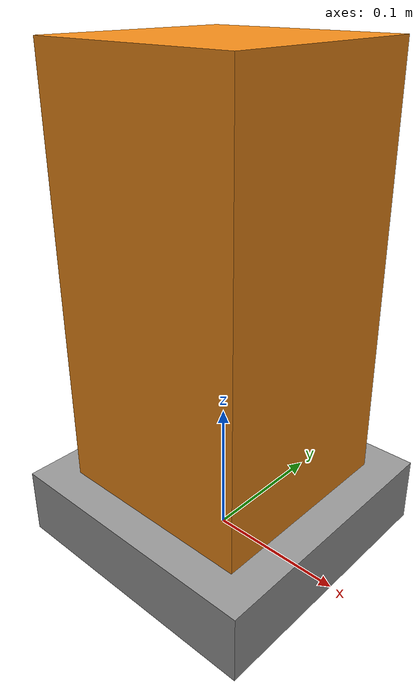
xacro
<?xml version="1.0"?>
<!-- One DOF Hopper -->
<robot name="odh" xmlns:xacro="http://www.ros.org/wiki/xacro">

  <!-- Constants for robot dimensions -->
  <xacro:property name="PI" value="3.1415926535897931"/>
  <xacro:property name="body_mass" value="0.6" />
  <xacro:property name="body_width" value="0.15" />
  <xacro:property name="body_height" value="0.3" />

  <xacro:property name="piston_mass" value="0.02" />
  <xacro:property name="piston_width" value="0.1" />
  <xacro:property name="piston_height" value="0.25" />

  <xacro:property name="foot_mass" value="0.2" />
  <xacro:property name="foot_width" value="0.2" />
  <xacro:property name="foot_height" value="0.05" />

  <!-- Import all Gazebo-customization elements, including Gazebo colors -->
  <xacro:include filename="$(find odh_description)/urdf/odh.gazebo" />
  <!-- Import Rviz colors -->
  <xacro:include filename="$(find odh_description)/urdf/materials.xacro" />

  <!-- Used for fixing robot to Gazebo 'base_link' -->
  <link name="world"/>

  <joint name="one_dof" type="prismatic">
    <origin xyz="0 0 0" rpy="0 0 0"/>
    <axis xyz="0 0 1"/>
    <parent link="world"/>
    <child link="foot"/>
    <dynamics damping="0.0" friction="0.0"/>
    <limit effort="0" lower="-100" upper="100" velocity="1000"/>
    <safety_controller k_position="0" k_velocity="0" soft_lower_limit="-100" soft_upper_limit="100"/>
  </joint>

  <link name='body'>
    <collision name='collision'>
      <origin xyz="0 0 ${body_height/2}" rpy="0 0 0"/>
      <geometry>
        <box size="${body_width} ${body_width} ${body_height}" />
      </geometry>
    </collision>

    <visual name='visual'>
      <origin xyz="0 0 ${body_height/2}" rpy="0 0 0"/>
      <geometry>
        <box size="${body_width} ${body_width} ${body_height}" />
      </geometry>
    </visual>

    <inertial name='inertial'>
      <origin xyz="0 0 ${body_height/2}" rpy="0 0 0"/>
      <mass value="${body_mass}" />
      <inertia ixx="${1/12*body_mass*(body_height*body_height+body_width*body_width)}" ixy="0" ixz="0"
          iyy="${1/12*body_mass*(body_height*body_height+body_width*body_width)}" iyz="0"
          izz="${1/6*body_mass*body_width*body_width}" />
    </inertial>
  </link>

  <link name='piston'>
    <collision name='collision'>
      <origin xyz="0 0 ${piston_height/2}" rpy="0 0 0"/>
      <geometry>
        <box size="${piston_width} ${piston_width} ${piston_height}" />
      </geometry>
    </collision>

    <visual name='visual'>
      <origin xyz="0 0 ${piston_height/2}" rpy="0 0 0"/>
      <geometry>
        <box size="${piston_width} ${piston_width} ${piston_height}" />
      </geometry>
    </visual>

    <inertial name='inertial'>
      <origin xyz="0 0 ${piston_height/2}" rpy="0 0 0"/>
      <mass value="${piston_mass}" />
      <inertia ixx="${1/12*piston_mass*(piston_height*piston_height+piston_width*piston_width)}" ixy="0" ixz="0"
          iyy="${1/12*piston_mass*(piston_height*piston_height+piston_width*piston_width)}" iyz="0"
          izz="${1/6*piston_mass*piston_width*piston_width}" />
    </inertial>
  </link>

  <link name='foot'>
    <collision name='collision'>
      <origin xyz="0 0 ${foot_height/2}" rpy="0 0 0"/>
      <geometry>
        <box size="${foot_width} ${foot_width} ${foot_height}" />
      </geometry>
    </collision>

    <visual name='visual'>
      <origin xyz="0 0 ${foot_height/2}" rpy="0 0 0"/>
      <geometry>
        <box size="${foot_width} ${foot_width} ${foot_height}" />
      </geometry>
    </visual>

    <inertial name='inertial'>
      <origin xyz="0 0 ${foot_height/2}" rpy="0 0 0"/>
      <mass value="${foot_mass}" />
      <inertia ixx="${1/12*foot_mass*(foot_height*foot_height+foot_width*foot_width)}" ixy="0" ixz="0"
          iyy="${1/12*foot_mass*(foot_height*foot_height+foot_width*foot_width)}" iyz="0"
          izz="${1/6*foot_mass*foot_width*foot_width}" />
    </inertial>
  </link>

  <!-- Joints -->
  <joint name="spring_axis" type="prismatic">
    <origin xyz="0 0 ${foot_height}" rpy="0 0 0"/>
    <axis xyz="0 0 1"/>
    <parent link="foot"/>
    <child link="piston"/>
    <dynamics damping="0.1" friction="0.0"/>
    <limit effort="2000" lower="0" upper="2" velocity="12"/>
    <safety_controller k_position="100" k_velocity="10" soft_lower_limit="0.05" soft_upper_limit="1.95"/>
  </joint>

  <joint name="piston_axis" type="prismatic">
    <origin xyz="0 0 0" rpy="0 0 0"/>
    <axis xyz="0 0 1"/>
    <parent link="piston"/>
    <child link="body"/>
    <dynamics damping="0.1" friction="0.0"/>
    <limit effort="10000" lower="0" upper="${piston_height}" velocity="12"/>
    <safety_controller k_position="100" k_velocity="10" soft_lower_limit="0.01" soft_upper_limit="${piston_height-0.01}"/>
  </joint>

  <transmission name="spring_axis_tran">
    <type>transmission_interface/SimpleTransmission</type>
    <joint name="spring_axis"/>
    <actuator name="spring">
      <hardwareInterface>EffortJointInterface</hardwareInterface>
      <mechanicalReduction>1</mechanicalReduction>
    </actuator>
  </transmission>

  <transmission name="piston_axis_tran">
    <type>transmission_interface/SimpleTransmission</type>
    <joint name="piston_axis"/>
    <actuator name="piston">
      <hardwareInterface>EffortJointInterface</hardwareInterface>
      <mechanicalReduction>1</mechanicalReduction>
    </actuator>
  </transmission>

</robot>
